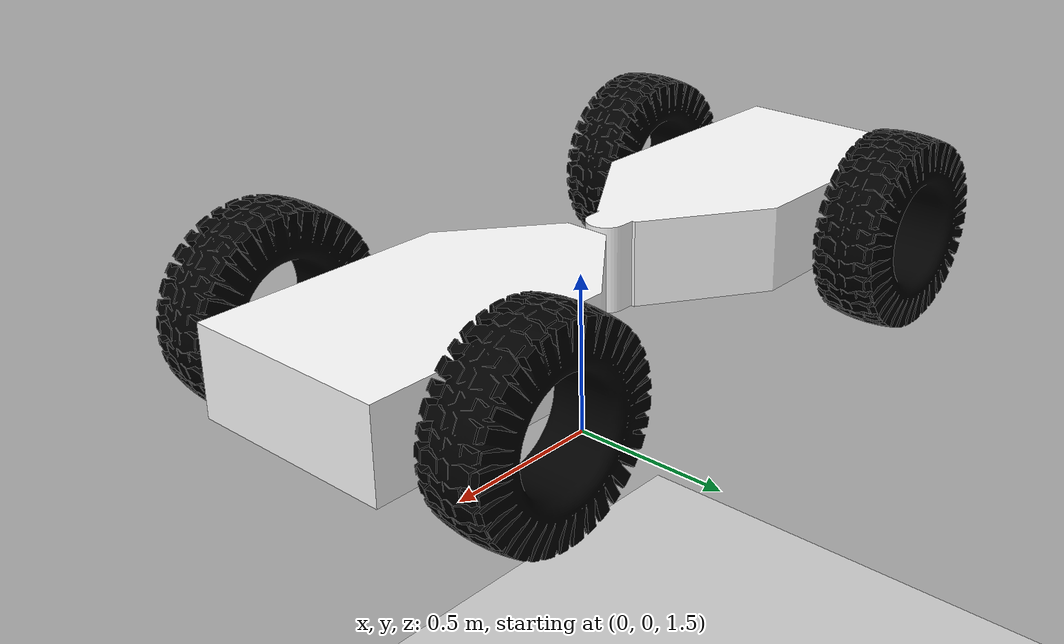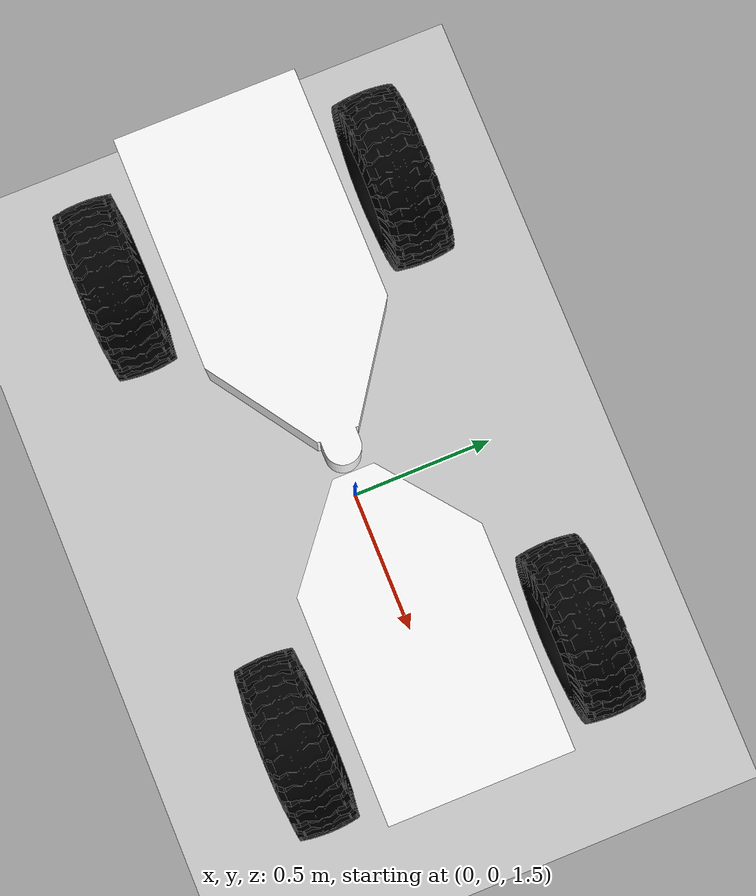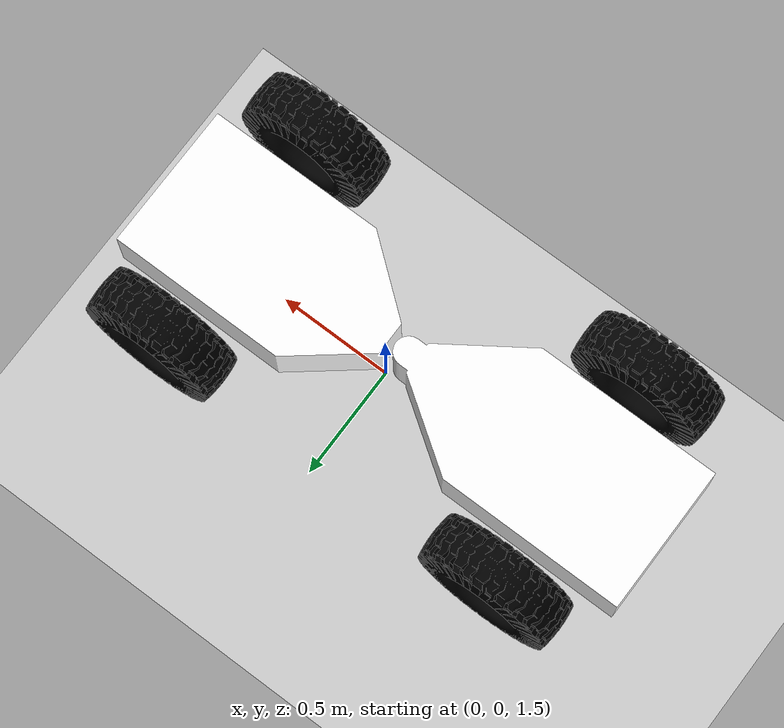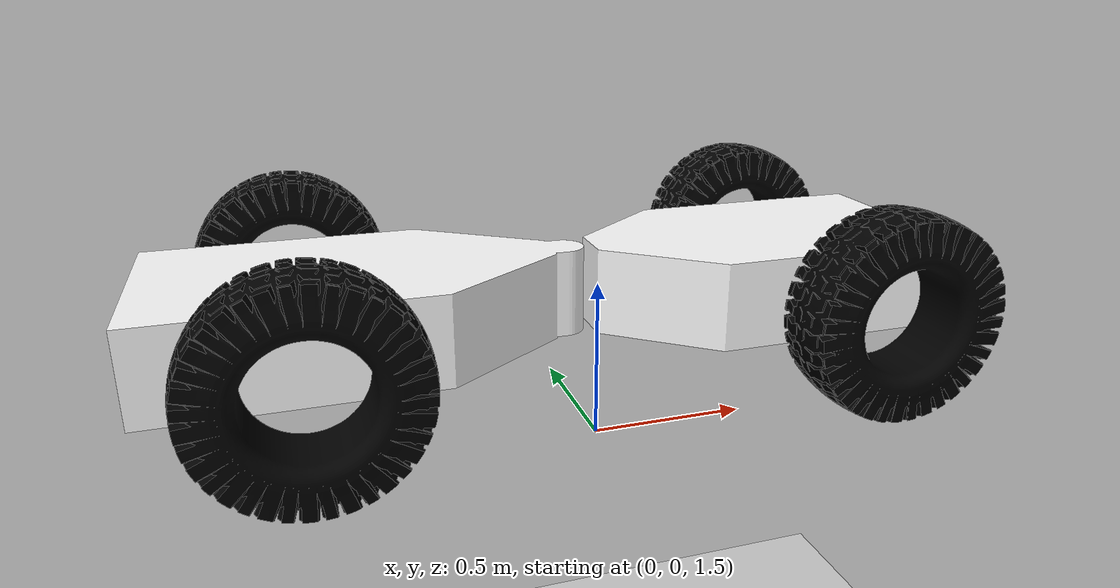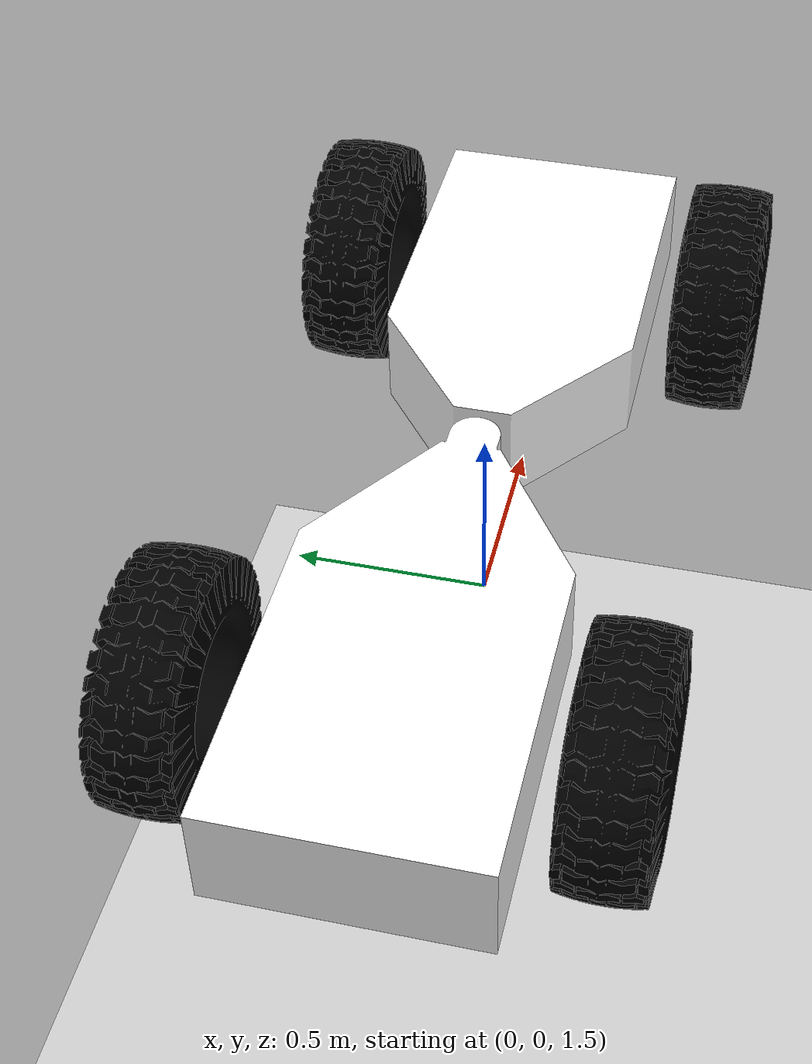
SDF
<?xml version="1.0" ?>
<sdf version="1.6">
  <world name="diff_drive">

    <physics name="1ms" type="ignored">
      <max_step_size>0.001</max_step_size>
      <real_time_factor>1.0</real_time_factor>
    </physics>
    <plugin
      filename="ignition-gazebo-physics-system"
      name="ignition::gazebo::systems::Physics">
    </plugin>
    <plugin
      filename="ignition-gazebo-user-commands-system"
      name="ignition::gazebo::systems::UserCommands">
    </plugin>
    <plugin
      filename="ignition-gazebo-scene-broadcaster-system"
      name="ignition::gazebo::systems::SceneBroadcaster">
    </plugin>

    <light type="directional" name="sun">
      <cast_shadows>true</cast_shadows>
      <pose>0 0 10 0 0 0</pose>
      <diffuse>1 1 1 1</diffuse>
      <specular>0.5 0.5 0.5 1</specular>
      <attenuation>
        <range>1000</range>
        <constant>0.9</constant>
        <linear>0.01</linear>
        <quadratic>0.001</quadratic>
      </attenuation>
      <direction>-0.5 0.1 -0.9</direction>
    </light>

    <model name="ground_plane">
      <static>true</static>
      <link name="link">
        <collision name="collision">
          <geometry>
            <plane>
              <normal>0 0 1</normal>
              <size>100 100</size>
            </plane>
          </geometry>
          <surface>
            <friction>
              <ode>
                <mu>50</mu>
              </ode>
            </friction>
          </surface>
        </collision>
        <visual name="visual">
          <geometry>
            <plane>
              <normal>0 0 1</normal>
              <size>100 100</size>
            </plane>
          </geometry>
          <material>
            <ambient>0.8 0.8 0.8 1</ambient>
            <diffuse>0.8 0.8 0.8 1</diffuse>
            <specular>0.8 0.8 0.8 1</specular>
          </material>
        </visual>
      </link>
    </model>

    <include>
      <pose>0 0 2 0 0 0</pose>
      <uri>
        model://wagon_model
      </uri>
    </include>
  </world>
</sdf>

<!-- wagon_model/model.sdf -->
<sdf version='1.9'>
  <model name='wagon'>
    <link name='base_footprint'>
      <inertial>
        <pose>0.5528 0 0 0 0 0</pose>
        <mass>7.5</mass>
        <inertia>
          <ixx>0.048059999999999999</ixx>
          <ixy>0</ixy>
          <ixz>0</ixz>
          <iyy>0.1193</iyy>
          <iyz>0</iyz>
          <izz>0.14929999999999979</izz>
        </inertia>
      </inertial>
      <collision name='base_footprint_fixed_joint_lump__base_link_collision'>
        <pose>0.5075 0 0 0 0 0</pose>
        <geometry>
          <box>
            <size>1.055 0.62 0.26</size>
          </box>
        </geometry>
      </collision>
      <visual name='base_footprint_fixed_joint_lump__base_link_visual'>
        <pose>0.6948 0 0 0 0 1.57</pose>
        <geometry>
          <mesh>
            <scale>0.001 0.001 0.001</scale>
            <uri>/home/daniel/master_ws/install/wagon_description/share/wagon_description/meshes/bases/Simplified_Front_Centered.stl</uri>
          </mesh>
        </geometry>
        <material>
          <diffuse>1 1 1 1</diffuse>
          <ambient>1 1 1 1</ambient>
        </material>
      </visual>
    </link>
    <joint name='hydrolic_joint' type='revolute'>
      <pose relative_to='base_footprint'>-0.08499999999999996 0 0 0 0 0</pose>
      <parent>base_footprint</parent>
      <child>hydrolic_link</child>
      <axis>
        <xyz>0 0 1</xyz>
        <limit>
          <lower>-0.55000000000000004</lower>
          <upper>0.55000000000000004</upper>
          <effort>1000</effort>
          <velocity>0.5</velocity>
        </limit>
        <dynamics>
          <spring_reference>0</spring_reference>
          <spring_stiffness>0</spring_stiffness>
        </dynamics>
      </axis>
    </joint>
    <link name='hydrolic_link'>
      <pose relative_to='hydrolic_joint'>0 0 0 0 0 0</pose>
      <inertial>
        <pose>-0.9286000000000001 0 0 0 0 0</pose>
        <mass>7.5</mass>
        <inertia>
          <ixx>0.048059999999999999</ixx>
          <ixy>0</ixy>
          <ixz>0</ixz>
          <iyy>0.1193</iyy>
          <iyz>0</iyz>
          <izz>0.14930000000000021</izz>
        </inertia>
      </inertial>
      <collision name='hydrolic_link_fixed_joint_lump__rear_link_collision'>
        <pose>-0.6966000000000001 0 0 0 0 0</pose>
        <geometry>
          <box>
            <size>1.02 0.62 0.26</size>
          </box>
        </geometry>
      </collision>
      <visual name='hydrolic_link_fixed_joint_lump__rear_link_visual'>
        <pose>-0.7866000000000001 0 0 0 0 1.57</pose>
        <geometry>
          <mesh>
            <scale>0.001 0.001 0.001</scale>
            <uri>/home/daniel/master_ws/install/wagon_description/share/wagon_description/meshes/bases/Simplified_Back_Centered.stl</uri>
          </mesh>
        </geometry>
        <material>
          <diffuse>1 1 1 1</diffuse>
          <ambient>1 1 1 1</ambient>
        </material>
      </visual>
    </link>
    <joint name='wheel_rear_left_joint' type='revolute'>
      <pose relative_to='hydrolic_link'>-0.7866000000000001 0.4815 0 0 0 0</pose>
      <parent>hydrolic_link</parent>
      <child>wheel_rear_left_link</child>
      <axis>
        <xyz>0 1 0</xyz>
        <limit>
          <lower>-10000000000000000</lower>
          <upper>10000000000000000</upper>
        </limit>
        <dynamics>
          <spring_reference>0</spring_reference>
          <spring_stiffness>0</spring_stiffness>
        </dynamics>
      </axis>
    </joint>
    <link name='wheel_rear_left_link'>
      <pose relative_to='wheel_rear_left_joint'>0 0 0 0 0 0</pose>
      <inertial>
        <pose>0 0 0 1.57 0 0</pose>
        <mass>1.5249999999999999</mass>
        <inertia>
          <ixx>0.0067229999999999998</ixx>
          <ixy>0</ixy>
          <ixz>0</ixz>
          <iyy>0.0067229999999999998</iyy>
          <iyz>0</iyz>
          <izz>0.012200000000000001</izz>
        </inertia>
      </inertial>
      <collision name='wheel_rear_left_link_collision'>
        <pose>0 0 0 1.57 0 0</pose>
        <geometry>
          <cylinder>
            <length>0.215</length>
            <radius>0.29399999999999998</radius>
          </cylinder>
        </geometry>
      </collision>
      <visual name='wheel_rear_left_link_visual'>
        <pose>0 0 0 1.57 0 0</pose>
        <geometry>
          <mesh>
            <scale>0.001 0.001 0.001</scale>
            <uri>/home/daniel/master_ws/install/wagon_description/share/wagon_description/meshes/wheels/Wheel.stl</uri>
          </mesh>
        </geometry>
        <material>
          <diffuse>0 0 0 1</diffuse>
          <ambient>0 0 0 1</ambient>
        </material>
      </visual>
    </link>
    <joint name='wheel_rear_right_joint' type='revolute'>
      <pose relative_to='hydrolic_link'>-0.7866000000000001 -0.4815 0 0 0 0</pose>
      <parent>hydrolic_link</parent>
      <child>wheel_rear_right_link</child>
      <axis>
        <xyz>0 1 0</xyz>
        <limit>
          <lower>-10000000000000000</lower>
          <upper>10000000000000000</upper>
        </limit>
        <dynamics>
          <spring_reference>0</spring_reference>
          <spring_stiffness>0</spring_stiffness>
        </dynamics>
      </axis>
    </joint>
    <link name='wheel_rear_right_link'>
      <pose relative_to='wheel_rear_right_joint'>0 0 0 0 0 0</pose>
      <inertial>
        <pose>0 0 0 1.57 0 0</pose>
        <mass>1.5249999999999999</mass>
        <inertia>
          <ixx>0.0067229999999999998</ixx>
          <ixy>0</ixy>
          <ixz>0</ixz>
          <iyy>0.0067229999999999998</iyy>
          <iyz>0</iyz>
          <izz>0.012200000000000001</izz>
        </inertia>
      </inertial>
      <collision name='wheel_rear_right_link_collision'>
        <pose>0 0 0 1.57 0 0</pose>
        <geometry>
          <cylinder>
            <length>0.215</length>
            <radius>0.29399999999999998</radius>
          </cylinder>
        </geometry>
      </collision>
      <visual name='wheel_rear_right_link_visual'>
        <pose>0 0 0 1.57 0 0</pose>
        <geometry>
          <mesh>
            <scale>0.001 0.001 0.001</scale>
            <uri>/home/daniel/master_ws/install/wagon_description/share/wagon_description/meshes/wheels/Wheel.stl</uri>
          </mesh>
        </geometry>
        <material>
          <diffuse>0 0 0 1</diffuse>
          <ambient>0 0 0 1</ambient>
        </material>
      </visual>
    </link>
    <joint name='wheel_front_left_joint' type='revolute'>
      <pose relative_to='base_footprint'>0.6948 0.4815 0 0 0 0</pose>
      <parent>base_footprint</parent>
      <child>wheel_front_left_link</child>
      <axis>
        <xyz>0 1 0</xyz>
        <limit>
          <lower>-10000000000000000</lower>
          <upper>10000000000000000</upper>
        </limit>
        <dynamics>
          <spring_reference>0</spring_reference>
          <spring_stiffness>0</spring_stiffness>
        </dynamics>
      </axis>
    </joint>
    <link name='wheel_front_left_link'>
      <pose relative_to='wheel_front_left_joint'>0 0 0 0 0 0</pose>
      <inertial>
        <pose>0 0 0 1.57 0 0</pose>
        <mass>1.5249999999999999</mass>
        <inertia>
          <ixx>0.0067229999999999998</ixx>
          <ixy>0</ixy>
          <ixz>0</ixz>
          <iyy>0.0067229999999999998</iyy>
          <iyz>0</iyz>
          <izz>0.012200000000000001</izz>
        </inertia>
      </inertial>
      <collision name='wheel_front_left_link_collision'>
        <pose>0 0 0 1.57 0 0</pose>
        <geometry>
          <cylinder>
            <length>0.215</length>
            <radius>0.29399999999999998</radius>
          </cylinder>
        </geometry>
      </collision>
      <visual name='wheel_front_left_link_visual'>
        <pose>0 0 0 1.57 0 0</pose>
        <geometry>
          <mesh>
            <scale>0.001 0.001 0.001</scale>
            <uri>/home/daniel/master_ws/install/wagon_description/share/wagon_description/meshes/wheels/Wheel.stl</uri>
          </mesh>
        </geometry>
        <material>
          <diffuse>0 0 0 1</diffuse>
          <ambient>0 0 0 1</ambient>
        </material>
      </visual>
    </link>
    <joint name='wheel_front_right_joint' type='revolute'>
      <pose relative_to='base_footprint'>0.6948 -0.4815 0 0 0 0</pose>
      <parent>base_footprint</parent>
      <child>wheel_front_right_link</child>
      <axis>
        <xyz>0 1 0</xyz>
        <limit>
          <lower>-10000000000000000</lower>
          <upper>10000000000000000</upper>
        </limit>
        <dynamics>
          <spring_reference>0</spring_reference>
          <spring_stiffness>0</spring_stiffness>
        </dynamics>
      </axis>
    </joint>
    <link name='wheel_front_right_link'>
      <pose relative_to='wheel_front_right_joint'>0 0 0 0 0 0</pose>
      <inertial>
        <pose>0 0 0 1.57 0 0</pose>
        <mass>1.5249999999999999</mass>
        <inertia>
          <ixx>0.0067229999999999998</ixx>
          <ixy>0</ixy>
          <ixz>0</ixz>
          <iyy>0.0067229999999999998</iyy>
          <iyz>0</iyz>
          <izz>0.012200000000000001</izz>
        </inertia>
      </inertial>
      <collision name='wheel_front_right_link_collision'>
        <pose>0 0 0 1.57 0 0</pose>
        <geometry>
          <cylinder>
            <length>0.215</length>
            <radius>0.29199999999999998</radius>
          </cylinder>
        </geometry>
      </collision>
      <visual name='wheel_front_right_link_visual'>
        <pose>0 0 0 1.57 0 0</pose>
        <geometry>
          <mesh>
            <scale>0.001 0.001 0.001</scale>
            <uri>/home/daniel/master_ws/install/wagon_description/share/wagon_description/meshes/wheels/Wheel.stl</uri>
          </mesh>
        </geometry>
        <material>
          <diffuse>0 0 0 1</diffuse>
          <ambient>0 0 0 1</ambient>
        </material>
      </visual>
    </link>
  </model>
</sdf>
